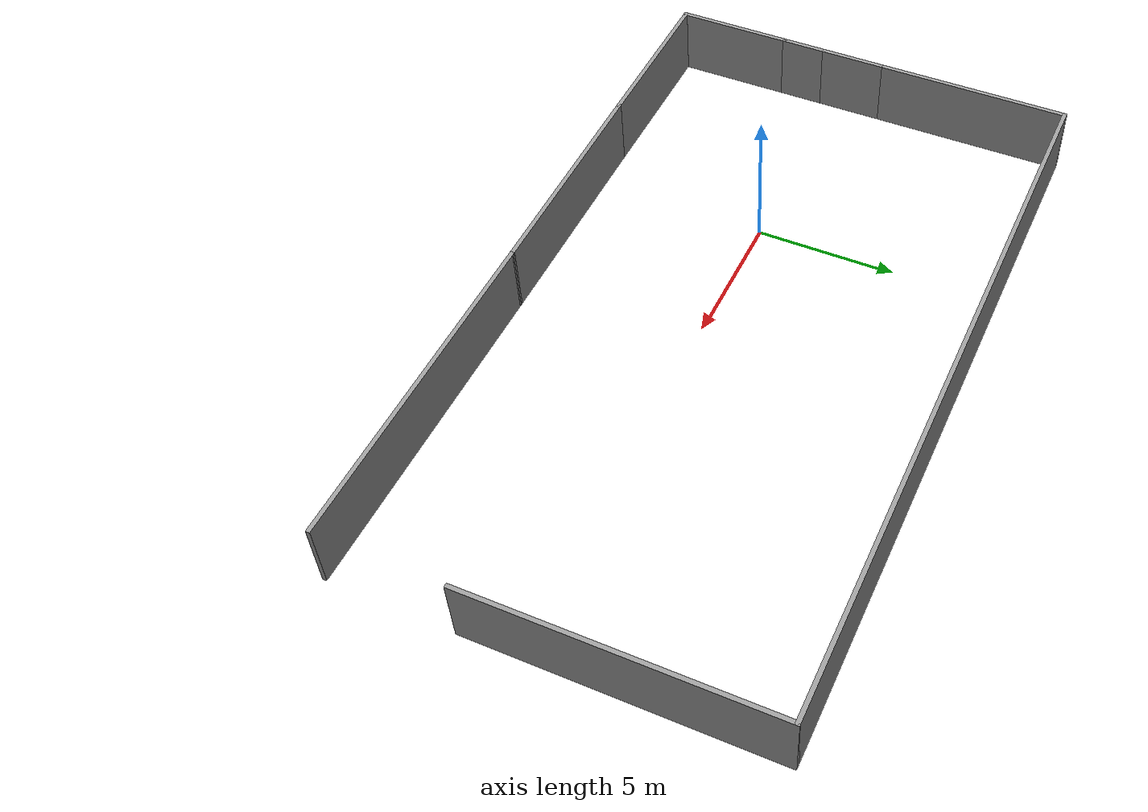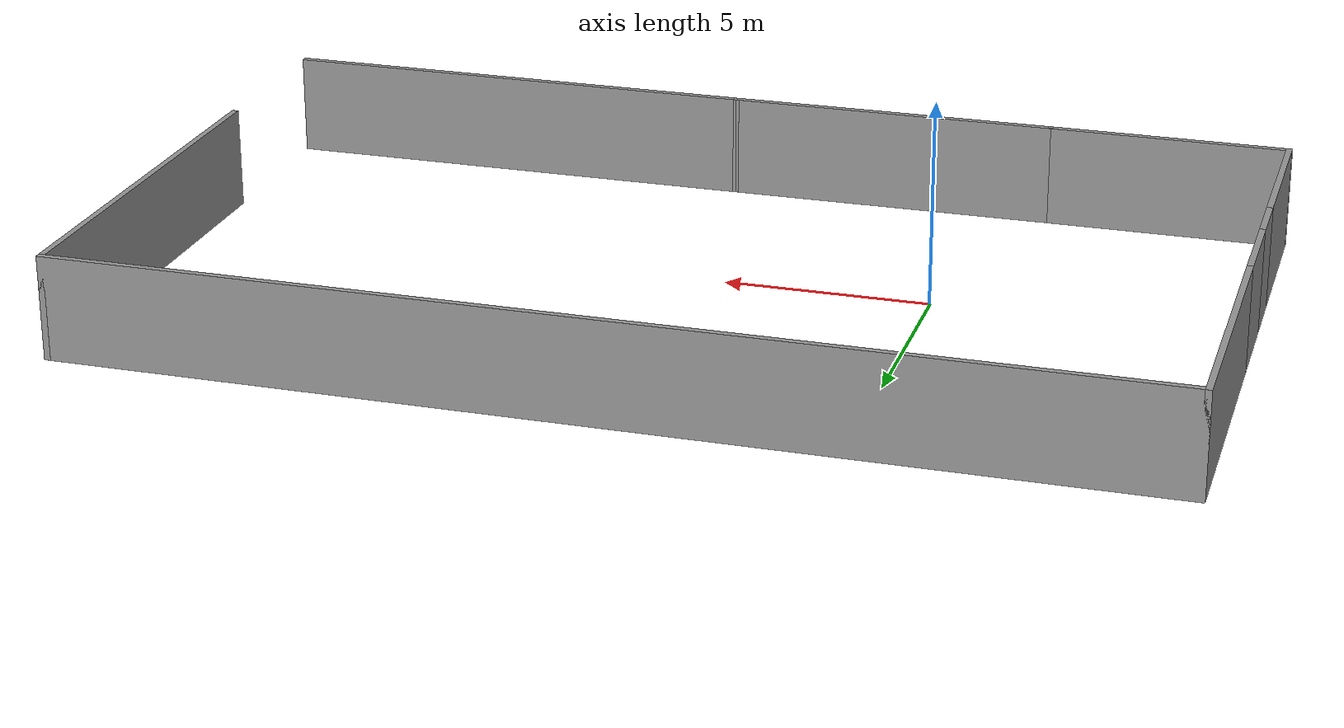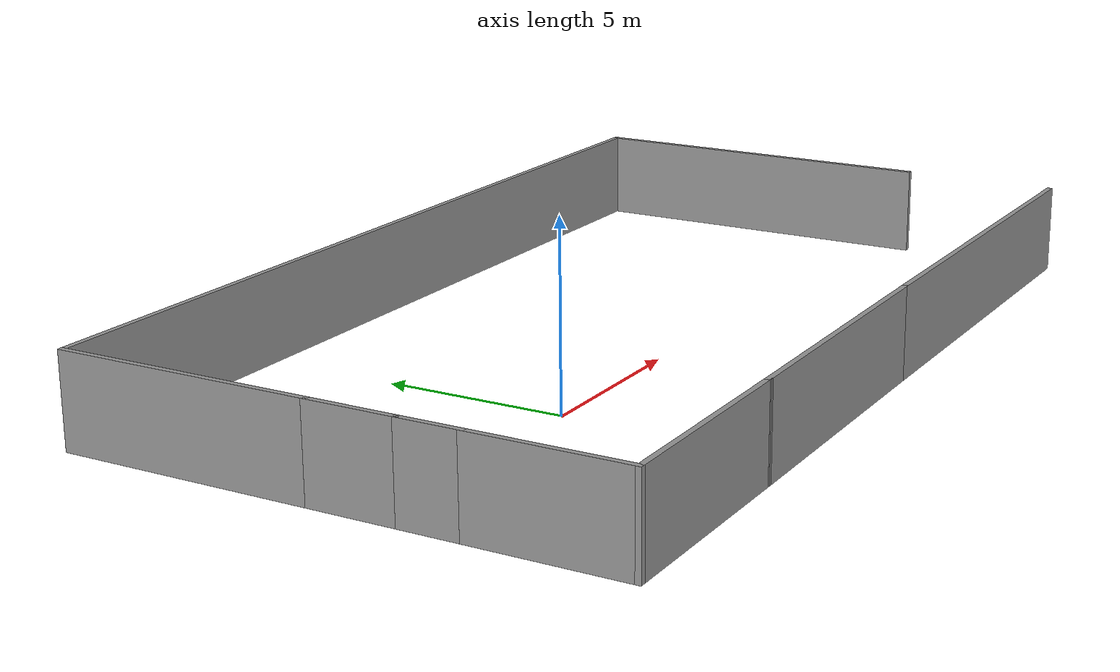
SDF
<?xml version='1.0'?>
<sdf version='1.6'>
  <model name='experiment'>
    <pose frame=''>5.425 1.23984 0 0 -0 0</pose>
    <link name='Wall_11'>
      <collision name='Wall_11_Collision'>
        <geometry>
          <box>
            <size>7 0.15 2.5</size>
          </box>
        </geometry>
        <pose frame=''>0 0 1.25 0 -0 0</pose>
      </collision>
      <visual name='Wall_11_Visual'>
        <pose frame=''>0 0 1.25 0 -0 0</pose>
        <geometry>
          <box>
            <size>7 0.15 2.5</size>
          </box>
        </geometry>
        <material>
          <script>
            <uri>file://media/materials/scripts/gazebo.material</uri>
            <name>Gazebo/Grey</name>
          </script>
          <ambient>1 1 1 1</ambient>
        </material>
        <meta>
          <layer>0</layer>
        </meta>
      </visual>
      <pose frame=''>-12.925 4.02516 0 0 -0 1.5708</pose>
    </link>
    <link name='Wall_12'>
      <collision name='Wall_12_Collision'>
        <geometry>
          <box>
            <size>26 0.15 2.5</size>
          </box>
        </geometry>
        <pose frame=''>0 0 1.25 0 -0 0</pose>
      </collision>
      <visual name='Wall_12_Visual'>
        <pose frame=''>0 0 1.25 0 -0 0</pose>
        <geometry>
          <box>
            <size>26 0.15 2.5</size>
          </box>
        </geometry>
        <material>
          <script>
            <uri>file://media/materials/scripts/gazebo.material</uri>
            <name>Gazebo/Grey</name>
          </script>
          <ambient>1 1 1 1</ambient>
        </material>
        <meta>
          <layer>0</layer>
        </meta>
      </visual>
      <pose frame=''>-0 7.45016 0 0 -0 0</pose>
    </link>
    <link name='Wall_13'>
      <collision name='Wall_13_Collision'>
        <geometry>
          <box>
            <size>10.5 0.15 2.5</size>
          </box>
        </geometry>
        <pose frame=''>0 0 1.25 0 -0 0</pose>
      </collision>
      <visual name='Wall_13_Visual'>
        <pose frame=''>0 0 1.25 0 -0 0</pose>
        <geometry>
          <box>
            <size>10.5 0.15 2.5</size>
          </box>
        </geometry>
        <material>
          <script>
            <uri>file://media/materials/scripts/gazebo.material</uri>
            <name>Gazebo/Grey</name>
          </script>
          <ambient>1 1 1 1</ambient>
        </material>
        <meta>
          <layer>0</layer>
        </meta>
      </visual>
      <pose frame=''>12.925 2.27516 0 0 -0 -1.5708</pose>
    </link>
    <link name='Wall_2'>
      <collision name='Wall_2_Collision'>
        <geometry>
          <box>
            <size>8.25008 0.15 2.5</size>
          </box>
        </geometry>
        <pose frame=''>0 0 1.25 0 -0 0</pose>
      </collision>
      <visual name='Wall_2_Visual'>
        <pose frame=''>0 0 1.25 0 -0 0</pose>
        <geometry>
          <box>
            <size>8.25008 0.15 2.5</size>
          </box>
        </geometry>
        <material>
          <script>
            <uri>file://media/materials/scripts/gazebo.material</uri>
            <name>Gazebo/Grey</name>
          </script>
          <ambient>1 1 1 1</ambient>
        </material>
        <meta>
          <layer>0</layer>
        </meta>
      </visual>
      <pose frame=''>-3.025 -7.43225 0 0 -0 0.004343</pose>
    </link>
    <link name='Wall_3'>
      <collision name='Wall_3_Collision'>
        <geometry>
          <box>
            <size>12 0.15 2.5</size>
          </box>
        </geometry>
        <pose frame=''>0 0 1.25 0 -0 0</pose>
      </collision>
      <visual name='Wall_3_Visual'>
        <pose frame=''>0 0 1.25 0 -0 0</pose>
        <geometry>
          <box>
            <size>12 0.15 2.5</size>
          </box>
        </geometry>
        <material>
          <script>
            <uri>file://media/materials/scripts/gazebo.material</uri>
            <name>Gazebo/Grey</name>
          </script>
          <ambient>1 1 1 1</ambient>
        </material>
        <meta>
          <layer>0</layer>
        </meta>
      </visual>
      <pose frame=''>6.95 -7.41466 0 0 -0 0</pose>
    </link>
    <link name='Wall_5'>
      <collision name='Wall_5_Collision'>
        <geometry>
          <box>
            <size>6 0.15 2.5</size>
          </box>
        </geometry>
        <pose frame=''>0 0 1.25 0 -0 0</pose>
      </collision>
      <visual name='Wall_5_Visual'>
        <pose frame=''>0 0 1.25 0 -0 0</pose>
        <geometry>
          <box>
            <size>6 0.15 2.5</size>
          </box>
        </geometry>
        <material>
          <script>
            <uri>file://media/materials/scripts/gazebo.material</uri>
            <name>Gazebo/Grey</name>
          </script>
          <ambient>1 1 1 1</ambient>
        </material>
        <meta>
          <layer>0</layer>
        </meta>
      </visual>
      <pose frame=''>-10 -7.44984 0 0 -0 3.14159</pose>
    </link>
    <link name='Wall_6'>
      <collision name='Wall_6_Collision'>
        <geometry>
          <box>
            <size>4.25 0.15 2.5</size>
          </box>
        </geometry>
        <pose frame=''>0 0 1.25 0 -0 0</pose>
      </collision>
      <visual name='Wall_6_Visual'>
        <pose frame=''>0 0 1.25 0 -0 0</pose>
        <geometry>
          <box>
            <size>4.25 0.15 2.5</size>
          </box>
        </geometry>
        <material>
          <script>
            <uri>file://media/materials/scripts/gazebo.material</uri>
            <name>Gazebo/Grey</name>
          </script>
          <ambient>1 1 1 1</ambient>
        </material>
        <meta>
          <layer>0</layer>
        </meta>
      </visual>
      <pose frame=''>-12.925 -5.39984 0 0 -0 1.5708</pose>
    </link>
    <link name='Wall_8'>
      <collision name='Wall_8_Collision'>
        <geometry>
          <box>
            <size>1.75 0.15 2.5</size>
          </box>
        </geometry>
        <pose frame=''>0 0 1.25 0 -0 0</pose>
      </collision>
      <visual name='Wall_8_Visual'>
        <pose frame=''>0 0 1.25 0 -0 0</pose>
        <geometry>
          <box>
            <size>1.75 0.15 2.5</size>
          </box>
        </geometry>
        <material>
          <script>
            <uri>file://media/materials/scripts/gazebo.material</uri>
            <name>Gazebo/Grey</name>
          </script>
          <ambient>1 1 1 1</ambient>
        </material>
        <meta>
          <layer>0</layer>
        </meta>
      </visual>
      <pose frame=''>-12.925 -2.54984 0 0 -0 1.5708</pose>
    </link>
    <link name='Wall_9'>
      <collision name='Wall_9_Collision'>
        <geometry>
          <box>
            <size>2.5 0.15 2.5</size>
          </box>
        </geometry>
        <pose frame=''>0 0 1.25 0 -0 0</pose>
      </collision>
      <visual name='Wall_9_Visual'>
        <pose frame=''>0 0 1.25 0 -0 0</pose>
        <geometry>
          <box>
            <size>2.5 0.15 2.5</size>
          </box>
        </geometry>
        <material>
          <script>
            <uri>file://media/materials/scripts/gazebo.material</uri>
            <name>Gazebo/Grey</name>
          </script>
          <ambient>1 1 1 1</ambient>
        </material>
        <meta>
          <layer>0</layer>
        </meta>
      </visual>
      <pose frame=''>-12.925 -0.574838 0 0 -0 1.5708</pose>
    </link>
    <static>1</static>
  </model>
</sdf>
